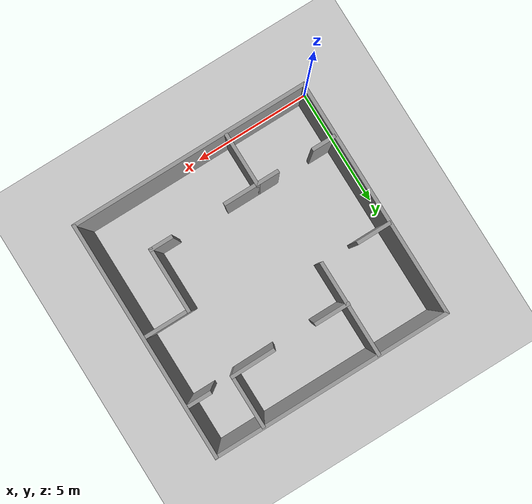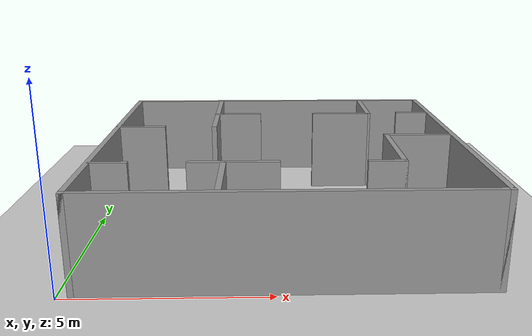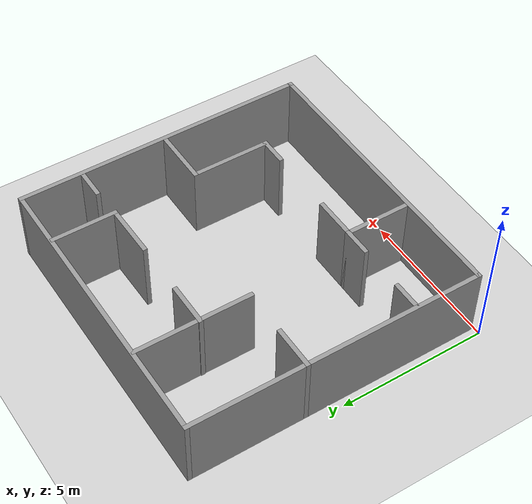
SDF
<sdf version="1.7">
 <world name="default">
  <light name="sun" type="directional">
   <pose>0 0 10 0 -0 0</pose>
   <diffuse>0.8 0.8 0.8 1</diffuse>
   <specular>0.2 0.2 0.2 1</specular>
   <attenuation>
    <range>1000</range>
    <constant>0.9</constant>
    <linear>0.01</linear>
    <quadratic>0.001</quadratic>
   </attenuation>
   <direction>-0.5 0.1 -0.9</direction>
   <spot><inner_angle>0</inner_angle><outer_angle>0</outer_angle><falloff>0</falloff></spot>
  </light>
  <model name="ground_plane">
   <static>1</static>
   <link name="link">
    <collision name="collision">
     <geometry><plane><normal>0 0 1</normal><size>100 100</size></plane></geometry>
     <surface><friction><ode><mu>100</mu><mu2>50</mu2></ode></friction></surface>
    </collision>
    <visual name="visual">
     <cast_shadows>0</cast_shadows>
     <geometry><plane><normal>0 0 1</normal><size>100 100</size></plane></geometry>
     <material>
      <script><uri>file://media/materials/scripts/gazebo.material</uri><name>Gazebo/Grey</name></script>
     </material>
    </visual>
   </link>
  </model>
  <gravity>0 0 -9.8</gravity>
  <magnetic_field>6e-06 2.3e-05 -4.2e-05</magnetic_field>
  <atmosphere type="adiabatic"/>
  <physics type="ode">
   <max_step_size>0.001</max_step_size>
   <real_time_factor>1</real_time_factor>
   <real_time_update_rate>1000</real_time_update_rate>
  </physics>
  <scene><ambient>0.4 0.4 0.4 1</ambient><background>0.7 0.7 0.7 1</background><shadows>1</shadows></scene>
  <audio><device>default</device></audio>
  <spherical_coordinates>
   <surface_model>EARTH_WGS84</surface_model>
   <latitude_deg>0</latitude_deg>
   <longitude_deg>0</longitude_deg>
   <elevation>0</elevation>
   <heading_deg>0</heading_deg>
  </spherical_coordinates>
  <model name="corridor"><pose>0.759479 4.35787 0 0 -0 0</pose><static>1</static></model>
  <model name="corridor_0"><static>1</static></model>
  <model name="corridor_1"><pose>-1.97218 4.37879 0 0 -0 0</pose><static>1</static></model>
  <model name="apartament">
   <pose>5.25531 5.0808 0 0 -0 0</pose>
   <link name="Wall_24">
    <collision name="Wall_24_Collision">
     <geometry><box><size>10 0.15 2.5</size></box></geometry>
     <pose>0 0 1.25 0 -0 0</pose>
    </collision>
    <visual name="Wall_24_Visual">
     <pose>0 0 1.25 0 -0 0</pose>
     <geometry><box><size>10 0.15 2.5</size></box></geometry>
     <material>
      <script><uri>file://media/materials/scripts/gazebo.material</uri><name>Gazebo/Grey</name></script>
      <ambient>1 1 1 1</ambient>
     </material>
     <meta><layer>0</layer></meta>
    </visual>
    <pose>-4.925 0 0 0 -0 -1.5708</pose>
   </link>
   <link name="Wall_25">
    <collision name="Wall_25_Collision">
     <geometry><box><size>10 0.15 2.5</size></box></geometry>
     <pose>0 0 1.25 0 -0 0</pose>
    </collision>
    <visual name="Wall_25_Visual">
     <pose>0 0 1.25 0 -0 0</pose>
     <geometry><box><size>10 0.15 2.5</size></box></geometry>
     <material>
      <script><uri>file://media/materials/scripts/gazebo.material</uri><name>Gazebo/Grey</name></script>
      <ambient>1 1 1 1</ambient>
     </material>
     <meta><layer>0</layer></meta>
    </visual>
    <pose>0 -4.925 0 0 -0 0</pose>
   </link>
   <link name="Wall_26">
    <collision name="Wall_26_Collision">
     <geometry><box><size>10 0.15 2.5</size></box></geometry>
     <pose>0 0 1.25 0 -0 0</pose>
    </collision>
    <visual name="Wall_26_Visual">
     <pose>0 0 1.25 0 -0 0</pose>
     <geometry><box><size>10 0.15 2.5</size></box></geometry>
     <material>
      <script><uri>file://media/materials/scripts/gazebo.material</uri><name>Gazebo/Grey</name></script>
      <ambient>1 1 1 1</ambient>
     </material>
     <meta><layer>0</layer></meta>
    </visual>
    <pose>4.925 0 0 0 -0 1.5708</pose>
   </link>
   <link name="Wall_27">
    <collision name="Wall_27_Collision">
     <geometry><box><size>10 0.15 2.5</size></box></geometry>
     <pose>0 0 1.25 0 -0 0</pose>
    </collision>
    <visual name="Wall_27_Visual">
     <pose>0 0 1.25 0 -0 0</pose>
     <geometry><box><size>10 0.15 2.5</size></box></geometry>
     <material>
      <script><uri>file://media/materials/scripts/gazebo.material</uri><name>Gazebo/Grey</name></script>
      <ambient>1 1 1 1</ambient>
     </material>
     <meta><layer>0</layer></meta>
    </visual>
    <pose>0 4.925 0 0 -0 3.14159</pose>
   </link>
   <link name="Wall_32">
    <collision name="Wall_32_Collision">
     <geometry><box><size>1 0.15 2.5</size></box></geometry>
     <pose>0 0 1.25 0 -0 0</pose>
    </collision>
    <visual name="Wall_32_Visual">
     <pose>0 0 1.25 0 -0 0</pose>
     <geometry><box><size>1 0.15 2.5</size></box></geometry>
     <material>
      <script><uri>file://media/materials/scripts/gazebo.material</uri><name>Gazebo/Grey</name></script>
      <ambient>1 1 1 1</ambient>
     </material>
     <meta><layer>0</layer></meta>
    </visual>
    <pose>4.34694 2.84382 0 0 -0 3.14159</pose>
   </link>
   <link name="Wall_34">
    <collision name="Wall_34_Collision">
     <geometry><box><size>2.25 0.15 2.5</size></box></geometry>
     <pose>0 0 1.25 0 -0 0</pose>
    </collision>
    <visual name="Wall_34_Visual">
     <pose>0 0 1.25 0 -0 0</pose>
     <geometry><box><size>2.25 0.15 2.5</size></box></geometry>
     <material>
      <script><uri>file://media/materials/scripts/gazebo.material</uri><name>Gazebo/Grey</name></script>
      <ambient>1 1 1 1</ambient>
     </material>
     <meta><layer>0</layer></meta>
    </visual>
    <pose>2.90213 3.82521 0 0 -0 1.5708</pose>
   </link>
   <link name="Wall_36">
    <collision name="Wall_36_Collision">
     <geometry><box><size>4 0.15 2.5</size></box></geometry>
     <pose>0 0 1.25 0 -0 0</pose>
    </collision>
    <visual name="Wall_36_Visual">
     <pose>0 0 1.25 0 -0 0</pose>
     <geometry><box><size>4 0.15 2.5</size></box></geometry>
     <material>
      <script><uri>file://media/materials/scripts/gazebo.material</uri><name>Gazebo/Grey</name></script>
      <ambient>1 1 1 1</ambient>
     </material>
     <meta><layer>0</layer></meta>
    </visual>
    <pose>-2.02049 2.95426 0 0 -0 -1.5708</pose>
   </link>
   <link name="Wall_38">
    <collision name="Wall_38_Collision">
     <geometry><box><size>1.5 0.15 2.5</size></box></geometry>
     <pose>0 0 1.25 0 -0 0</pose>
    </collision>
    <visual name="Wall_38_Visual">
     <pose>0 0 1.25 0 -0 0</pose>
     <geometry><box><size>1.5 0.15 2.5</size></box></geometry>
     <material>
      <script><uri>file://media/materials/scripts/gazebo.material</uri><name>Gazebo/Grey</name></script>
      <ambient>1 1 1 1</ambient>
     </material>
     <meta><layer>0</layer></meta>
    </visual>
    <pose>-4.25 1.05995 0 0 -0 0</pose>
   </link>
   <link name="Wall_43">
    <collision name="Wall_43_Collision">
     <geometry><box><size>1.5 0.15 2.5</size></box></geometry>
     <pose>0 0 1.25 0 -0 0</pose>
    </collision>
    <visual name="Wall_43_Visual">
     <pose>0 0 1.25 0 -0 0</pose>
     <geometry><box><size>1.5 0.15 2.5</size></box></geometry>
     <material>
      <script><uri>file://media/materials/scripts/gazebo.material</uri><name>Gazebo/Grey</name></script>
      <ambient>1 1 1 1</ambient>
     </material>
     <meta><layer>0</layer></meta>
    </visual>
    <pose>-1.36836 2.75234 0 0 -0 0</pose>
   </link>
   <link name="Wall_47">
    <collision name="Wall_47_Collision">
     <geometry><box><size>1.89564 0.15 2.5</size></box></geometry>
     <pose>0 0 1.25 0 -0 0</pose>
    </collision>
    <visual name="Wall_47_Visual">
     <pose>0 0 1.25 0 -0 0</pose>
     <geometry><box><size>1.89564 0.15 2.5</size></box></geometry>
     <material>
      <script><uri>file://media/materials/scripts/gazebo.material</uri><name>Gazebo/Grey</name></script>
      <ambient>1 1 1 1</ambient>
     </material>
     <meta><layer>0</layer></meta>
    </visual>
    <pose>2.02938 2.76377 0 0 -0 -3.12849</pose>
   </link>
   <link name="Wall_55">
    <collision name="Wall_55_Collision">
     <geometry><box><size>1 0.15 2.5</size></box></geometry>
     <pose>0 0 1.25 0 -0 0</pose>
    </collision>
    <visual name="Wall_55_Visual">
     <pose>0 0 1.25 0 -0 0</pose>
     <geometry><box><size>1 0.15 2.5</size></box></geometry>
     <material>
      <script><uri>file://media/materials/scripts/gazebo.material</uri><name>Gazebo/Grey</name></script>
      <ambient>1 1 1 1</ambient>
     </material>
     <meta><layer>0</layer></meta>
    </visual>
    <pose>-4.42185 -2.70389 0 0 -0 0</pose>
   </link>
   <link name="Wall_59">
    <collision name="Wall_59_Collision">
     <geometry><box><size>1 0.15 2.5</size></box></geometry>
     <pose>0 0 1.25 0 -0 0</pose>
    </collision>
    <visual name="Wall_59_Visual">
     <pose>0 0 1.25 0 -0 0</pose>
     <geometry><box><size>1 0.15 2.5</size></box></geometry>
     <material>
      <script><uri>file://media/materials/scripts/gazebo.material</uri><name>Gazebo/Grey</name></script>
      <ambient>1 1 1 1</ambient>
     </material>
     <meta><layer>0</layer></meta>
    </visual>
    <pose>-1.97185 -2.70389 0 0 -0 0</pose>
   </link>
   <link name="Wall_60">
    <collision name="Wall_60_Collision">
     <geometry><box><size>2.25 0.15 2.5</size></box></geometry>
     <pose>0 0 1.25 0 -0 0</pose>
    </collision>
    <visual name="Wall_60_Visual">
     <pose>0 0 1.25 0 -0 0</pose>
     <geometry><box><size>2.25 0.15 2.5</size></box></geometry>
     <material>
      <script><uri>file://media/materials/scripts/gazebo.material</uri><name>Gazebo/Grey</name></script>
      <ambient>1 1 1 1</ambient>
     </material>
     <meta><layer>0</layer></meta>
    </visual>
    <pose>-1.54685 -3.75389 0 0 -0 -1.5708</pose>
   </link>
   <link name="Wall_67">
    <collision name="Wall_67_Collision">
     <geometry><box><size>1.5 0.15 2.5</size></box></geometry>
     <pose>0 0 1.25 0 -0 0</pose>
    </collision>
    <visual name="Wall_67_Visual">
     <pose>0 0 1.25 0 -0 0</pose>
     <geometry><box><size>1.5 0.15 2.5</size></box></geometry>
     <material>
      <script><uri>file://media/materials/scripts/gazebo.material</uri><name>Gazebo/Grey</name></script>
      <ambient>1 1 1 1</ambient>
     </material>
     <meta><layer>0</layer></meta>
    </visual>
    <pose>-0.87185 -2.70389 0 0 -0 0</pose>
   </link>
   <link name="Wall_69">
    <collision name="Wall_69_Collision">
     <geometry><box><size>1 0.15 2.5</size></box></geometry>
     <pose>0 0 1.25 0 -0 0</pose>
    </collision>
    <visual name="Wall_69_Visual">
     <pose>0 0 1.25 0 -0 0</pose>
     <geometry><box><size>1 0.15 2.5</size></box></geometry>
     <material>
      <script><uri>file://media/materials/scripts/gazebo.material</uri><name>Gazebo/Grey</name></script>
      <ambient>1 1 1 1</ambient>
     </material>
     <meta><layer>0</layer></meta>
    </visual>
    <pose>2.57815 -2.70389 0 0 -0 0</pose>
   </link>
   <link name="Wall_70">
    <collision name="Wall_70_Collision">
     <geometry><box><size>2.75 0.15 2.5</size></box></geometry>
     <pose>0 0 1.25 0 -0 0</pose>
    </collision>
    <visual name="Wall_70_Visual">
     <pose>0 0 1.25 0 -0 0</pose>
     <geometry><box><size>2.75 0.15 2.5</size></box></geometry>
     <material>
      <script><uri>file://media/materials/scripts/gazebo.material</uri><name>Gazebo/Grey</name></script>
      <ambient>1 1 1 1</ambient>
     </material>
     <meta><layer>0</layer></meta>
    </visual>
    <pose>3.00315 -1.40389 0 0 -0 1.5708</pose>
   </link>
   <link name="Wall_71">
    <collision name="Wall_71_Collision">
     <geometry><box><size>2 0.15 2.5</size></box></geometry>
     <pose>0 0 1.25 0 -0 0</pose>
    </collision>
    <visual name="Wall_71_Visual">
     <pose>0 0 1.25 0 -0 0</pose>
     <geometry><box><size>2 0.15 2.5</size></box></geometry>
     <material>
      <script><uri>file://media/materials/scripts/gazebo.material</uri><name>Gazebo/Grey</name></script>
      <ambient>1 1 1 1</ambient>
     </material>
     <meta><layer>0</layer></meta>
    </visual>
    <pose>3.92815 -0.103886 0 0 -0 0</pose>
   </link>
   <static>1</static>
  </model>
 </world>
</sdf>
